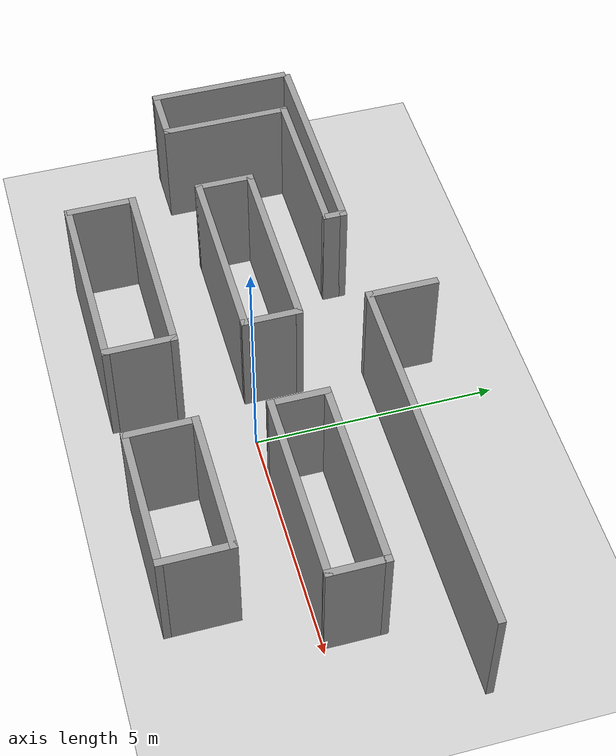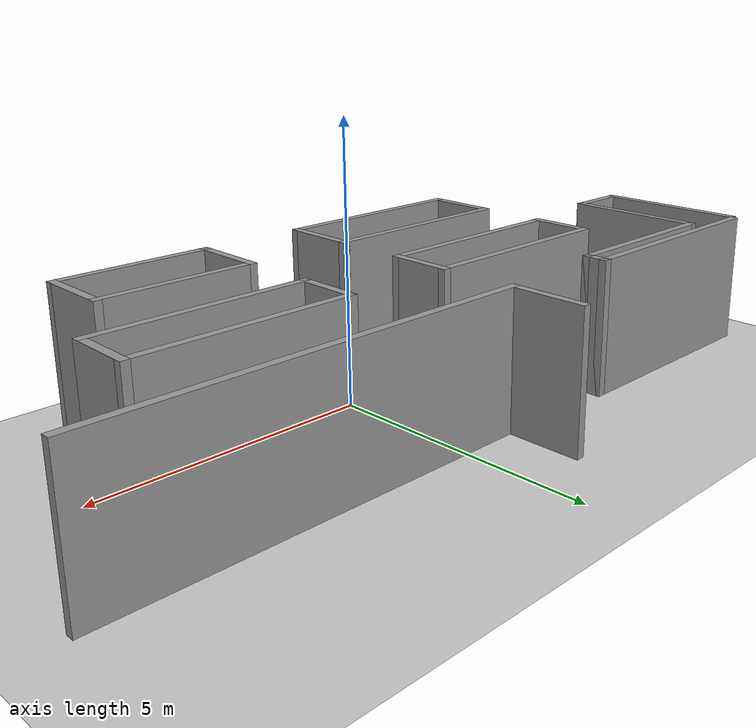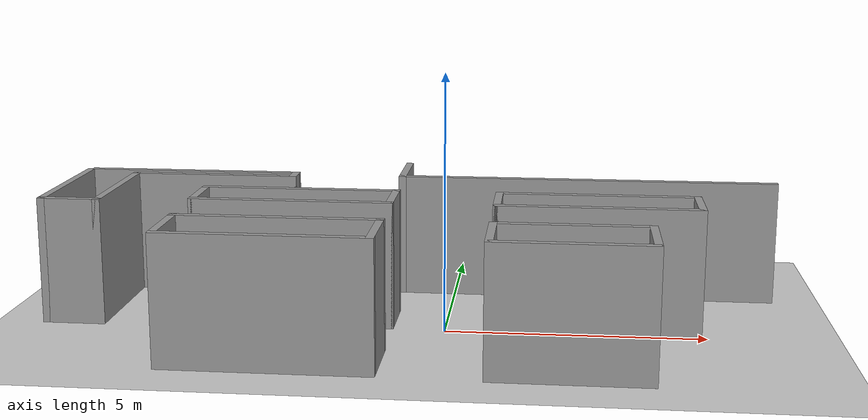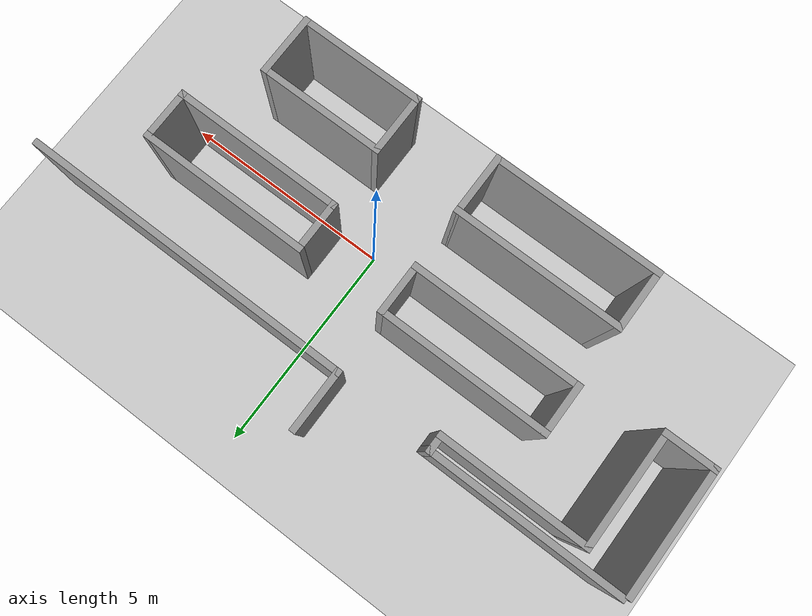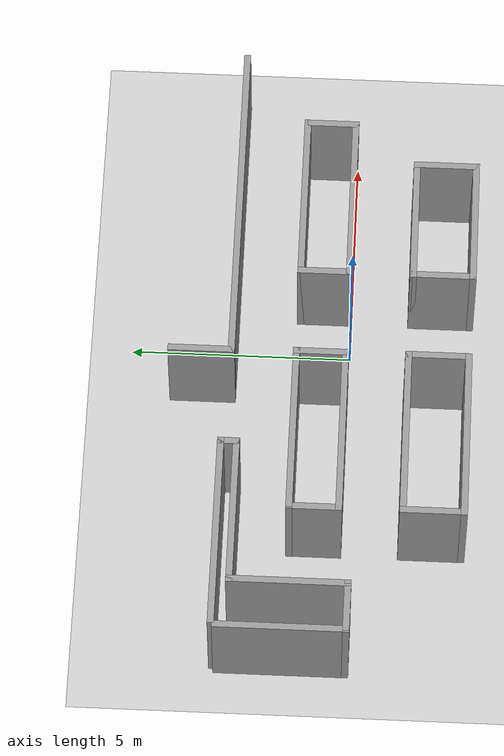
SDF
<sdf version="1.7">
 <world name="default">
  <light name="sun" type="directional">
   <pose>0 0 10 0 -0 0</pose>
   <diffuse>0.8 0.8 0.8 1</diffuse>
   <specular>0.2 0.2 0.2 1</specular>
   <attenuation>
    <range>1000</range>
    <constant>0.9</constant>
    <linear>0.01</linear>
    <quadratic>0.001</quadratic>
   </attenuation>
   <direction>-0.5 0.1 -0.9</direction>
   <spot><inner_angle>0</inner_angle><outer_angle>0</outer_angle><falloff>0</falloff></spot>
  </light>
  <model name="ground_plane">
   <static>1</static>
   <link name="link">
    <collision name="collision">
     <geometry><plane><normal>0 0 1</normal><size>100 100</size></plane></geometry>
     <surface><friction><ode><mu>100</mu><mu2>50</mu2></ode></friction></surface>
    </collision>
    <visual name="visual">
     <cast_shadows>0</cast_shadows>
     <geometry><plane><normal>0 0 1</normal><size>100 100</size></plane></geometry>
     <material>
      <script><uri>file://media/materials/scripts/gazebo.material</uri><name>Gazebo/Grey</name></script>
     </material>
    </visual>
   </link>
  </model>
  <gravity>0 0 -9.8</gravity>
  <magnetic_field>6e-06 2.3e-05 -4.2e-05</magnetic_field>
  <atmosphere type="adiabatic"/>
  <physics type="ode">
   <max_step_size>0.001</max_step_size>
   <real_time_factor>1</real_time_factor>
   <real_time_update_rate>1000</real_time_update_rate>
  </physics>
  <scene><ambient>0.4 0.4 0.4 1</ambient><background>0.7 0.7 0.7 1</background><shadows>1</shadows></scene>
  <audio><device>default</device></audio>
  <spherical_coordinates>
   <surface_model>EARTH_WGS84</surface_model>
   <latitude_deg>0</latitude_deg>
   <longitude_deg>0</longitude_deg>
   <elevation>0</elevation>
   <heading_deg>0</heading_deg>
  </spherical_coordinates>
  <model name="wall">
   <pose>-0.68153 0.64536 0 0 -0 0</pose>
   <link name="Wall_0">
    <collision name="Wall_0_Collision">
     <geometry><box><size>4 0.15 2.5</size></box></geometry>
     <pose>0 0 1.25 0 -0 0</pose>
    </collision>
    <visual name="Wall_0_Visual">
     <pose>0 0 1.25 0 -0 0</pose>
     <geometry><box><size>4 0.15 2.5</size></box></geometry>
     <material>
      <script><uri>file://media/materials/scripts/gazebo.material</uri><name>Gazebo/Grey</name></script>
      <ambient>1 1 1 1</ambient>
     </material>
     <meta><layer>0</layer></meta>
    </visual>
    <pose>-2.30976 -1.96464 0 0 -0 0</pose>
   </link>
   <link name="Wall_1">
    <collision name="Wall_1_Collision">
     <geometry><box><size>1.5 0.15 2.5</size></box></geometry>
     <pose>0 0 1.25 0 -0 0</pose>
    </collision>
    <visual name="Wall_1_Visual">
     <pose>0 0 1.25 0 -0 0</pose>
     <geometry><box><size>1.5 0.15 2.5</size></box></geometry>
     <material>
      <script><uri>file://media/materials/scripts/gazebo.material</uri><name>Gazebo/Grey</name></script>
      <ambient>1 1 1 1</ambient>
     </material>
     <meta><layer>0</layer></meta>
    </visual>
    <pose>-0.384764 -2.63964 0 0 -0 -1.5708</pose>
   </link>
   <link name="Wall_11">
    <collision name="Wall_11_Collision">
     <geometry><box><size>4 0.15 2.5</size></box></geometry>
     <pose>0 0 1.25 0 -0 0</pose>
    </collision>
    <visual name="Wall_11_Visual">
     <pose>0 0 1.25 0 -0 0</pose>
     <geometry><box><size>4 0.15 2.5</size></box></geometry>
     <material>
      <script><uri>file://media/materials/scripts/gazebo.material</uri><name>Gazebo/Grey</name></script>
      <ambient>1 1 1 1</ambient>
     </material>
     <meta><layer>0</layer></meta>
    </visual>
    <pose>-2.32146 -0.551695 0 0 -0 0</pose>
   </link>
   <link name="Wall_12">
    <collision name="Wall_12_Collision">
     <geometry><box><size>1.25 0.15 2.5</size></box></geometry>
     <pose>0 0 1.25 0 -0 0</pose>
    </collision>
    <visual name="Wall_12_Visual">
     <pose>0 0 1.25 0 -0 0</pose>
     <geometry><box><size>1.25 0.15 2.5</size></box></geometry>
     <material>
      <script><uri>file://media/materials/scripts/gazebo.material</uri><name>Gazebo/Grey</name></script>
      <ambient>1 1 1 1</ambient>
     </material>
     <meta><layer>0</layer></meta>
    </visual>
    <pose>-0.396464 -0.001695 0 0 -0 1.5708</pose>
   </link>
   <link name="Wall_13">
    <collision name="Wall_13_Collision">
     <geometry><box><size>4 0.15 2.5</size></box></geometry>
     <pose>0 0 1.25 0 -0 0</pose>
    </collision>
    <visual name="Wall_13_Visual">
     <pose>0 0 1.25 0 -0 0</pose>
     <geometry><box><size>4 0.15 2.5</size></box></geometry>
     <material>
      <script><uri>file://media/materials/scripts/gazebo.material</uri><name>Gazebo/Grey</name></script>
      <ambient>1 1 1 1</ambient>
     </material>
     <meta><layer>0</layer></meta>
    </visual>
    <pose>-2.32146 0.548305 0 0 -0 3.14159</pose>
   </link>
   <link name="Wall_14">
    <collision name="Wall_14_Collision">
     <geometry><box><size>1.25 0.15 2.5</size></box></geometry>
     <pose>0 0 1.25 0 -0 0</pose>
    </collision>
    <visual name="Wall_14_Visual">
     <pose>0 0 1.25 0 -0 0</pose>
     <geometry><box><size>1.25 0.15 2.5</size></box></geometry>
     <material>
      <script><uri>file://media/materials/scripts/gazebo.material</uri><name>Gazebo/Grey</name></script>
      <ambient>1 1 1 1</ambient>
     </material>
     <meta><layer>0</layer></meta>
    </visual>
    <pose>-4.24646 -0.001695 0 0 -0 -1.5708</pose>
   </link>
   <link name="Wall_16">
    <collision name="Wall_16_Collision">
     <geometry><box><size>4 0.15 2.5</size></box></geometry>
     <pose>0 0 1.25 0 -0 0</pose>
    </collision>
    <visual name="Wall_16_Visual">
     <pose>0 0 1.25 0 -0 0</pose>
     <geometry><box><size>4 0.15 2.5</size></box></geometry>
     <material>
      <script><uri>file://media/materials/scripts/gazebo.material</uri><name>Gazebo/Grey</name></script>
      <ambient>1 1 1 1</ambient>
     </material>
     <meta><layer>0</layer></meta>
    </visual>
    <pose>3.57689 -0.56492 0 0 -0 0</pose>
   </link>
   <link name="Wall_17">
    <collision name="Wall_17_Collision">
     <geometry><box><size>1.25 0.15 2.5</size></box></geometry>
     <pose>0 0 1.25 0 -0 0</pose>
    </collision>
    <visual name="Wall_17_Visual">
     <pose>0 0 1.25 0 -0 0</pose>
     <geometry><box><size>1.25 0.15 2.5</size></box></geometry>
     <material>
      <script><uri>file://media/materials/scripts/gazebo.material</uri><name>Gazebo/Grey</name></script>
      <ambient>1 1 1 1</ambient>
     </material>
     <meta><layer>0</layer></meta>
    </visual>
    <pose>5.50189 -0.01492 0 0 -0 1.5708</pose>
   </link>
   <link name="Wall_18">
    <collision name="Wall_18_Collision">
     <geometry><box><size>4 0.15 2.5</size></box></geometry>
     <pose>0 0 1.25 0 -0 0</pose>
    </collision>
    <visual name="Wall_18_Visual">
     <pose>0 0 1.25 0 -0 0</pose>
     <geometry><box><size>4 0.15 2.5</size></box></geometry>
     <material>
      <script><uri>file://media/materials/scripts/gazebo.material</uri><name>Gazebo/Grey</name></script>
      <ambient>1 1 1 1</ambient>
     </material>
     <meta><layer>0</layer></meta>
    </visual>
    <pose>3.57689 0.53508 0 0 -0 3.14159</pose>
   </link>
   <link name="Wall_19">
    <collision name="Wall_19_Collision">
     <geometry><box><size>1.25 0.15 2.5</size></box></geometry>
     <pose>0 0 1.25 0 -0 0</pose>
    </collision>
    <visual name="Wall_19_Visual">
     <pose>0 0 1.25 0 -0 0</pose>
     <geometry><box><size>1.25 0.15 2.5</size></box></geometry>
     <material>
      <script><uri>file://media/materials/scripts/gazebo.material</uri><name>Gazebo/Grey</name></script>
      <ambient>1 1 1 1</ambient>
     </material>
     <meta><layer>0</layer></meta>
    </visual>
    <pose>1.65189 -0.01492 0 0 -0 -1.5708</pose>
   </link>
   <link name="Wall_21">
    <collision name="Wall_21_Collision">
     <geometry><box><size>2.75 0.15 2.5</size></box></geometry>
     <pose>0 0 1.25 0 -0 0</pose>
    </collision>
    <visual name="Wall_21_Visual">
     <pose>0 0 1.25 0 -0 0</pose>
     <geometry><box><size>2.75 0.15 2.5</size></box></geometry>
     <material>
      <script><uri>file://media/materials/scripts/gazebo.material</uri><name>Gazebo/Grey</name></script>
      <ambient>1 1 1 1</ambient>
     </material>
     <meta><layer>0</layer></meta>
    </visual>
    <pose>-6.0648 0.479483 0 0 -0 1.5708</pose>
   </link>
   <link name="Wall_22">
    <collision name="Wall_22_Collision">
     <geometry><box><size>3.5 0.15 2.5</size></box></geometry>
     <pose>0 0 1.25 0 -0 0</pose>
    </collision>
    <visual name="Wall_22_Visual">
     <pose>0 0 1.25 0 -0 0</pose>
     <geometry><box><size>3.5 0.15 2.5</size></box></geometry>
     <material>
      <script><uri>file://media/materials/scripts/gazebo.material</uri><name>Gazebo/Grey</name></script>
      <ambient>1 1 1 1</ambient>
     </material>
     <meta><layer>0</layer></meta>
    </visual>
    <pose>-4.3898 1.77948 0 0 -0 0</pose>
   </link>
   <link name="Wall_23">
    <collision name="Wall_23_Collision">
     <geometry><box><size>0.5 0.15 2.5</size></box></geometry>
     <pose>0 0 1.25 0 -0 0</pose>
    </collision>
    <visual name="Wall_23_Visual">
     <pose>0 0 1.25 0 -0 0</pose>
     <geometry><box><size>0.5 0.15 2.5</size></box></geometry>
     <material>
      <script><uri>file://media/materials/scripts/gazebo.material</uri><name>Gazebo/Grey</name></script>
      <ambient>1 1 1 1</ambient>
     </material>
     <meta><layer>0</layer></meta>
    </visual>
    <pose>-2.7148 1.95448 0 0 -0 1.5708</pose>
   </link>
   <link name="Wall_24">
    <collision name="Wall_24_Collision">
     <geometry><box><size>4.5 0.15 2.5</size></box></geometry>
     <pose>0 0 1.25 0 -0 0</pose>
    </collision>
    <visual name="Wall_24_Visual">
     <pose>0 0 1.25 0 -0 0</pose>
     <geometry><box><size>4.5 0.15 2.5</size></box></geometry>
     <material>
      <script><uri>file://media/materials/scripts/gazebo.material</uri><name>Gazebo/Grey</name></script>
      <ambient>1 1 1 1</ambient>
     </material>
     <meta><layer>0</layer></meta>
    </visual>
    <pose>-4.8898 2.12948 0 0 -0 3.14159</pose>
   </link>
   <link name="Wall_28">
    <collision name="Wall_28_Collision">
     <geometry><box><size>1.25 0.15 2.5</size></box></geometry>
     <pose>0 0 1.25 0 -0 0</pose>
    </collision>
    <visual name="Wall_28_Visual">
     <pose>0 0 1.25 0 -0 0</pose>
     <geometry><box><size>1.25 0.15 2.5</size></box></geometry>
     <material>
      <script><uri>file://media/materials/scripts/gazebo.material</uri><name>Gazebo/Grey</name></script>
      <ambient>1 1 1 1</ambient>
     </material>
     <meta><layer>0</layer></meta>
    </visual>
    <pose>-6.6148 -0.820517 0 0 -0 3.14159</pose>
   </link>
   <link name="Wall_29">
    <collision name="Wall_29_Collision">
     <geometry><box><size>3 0.15 2.5</size></box></geometry>
     <pose>0 0 1.25 0 -0 0</pose>
    </collision>
    <visual name="Wall_29_Visual">
     <pose>0 0 1.25 0 -0 0</pose>
     <geometry><box><size>3 0.15 2.5</size></box></geometry>
     <material>
      <script><uri>file://media/materials/scripts/gazebo.material</uri><name>Gazebo/Grey</name></script>
      <ambient>1 1 1 1</ambient>
     </material>
     <meta><layer>0</layer></meta>
    </visual>
    <pose>-7.1648 0.604483 0 0 -0 1.5708</pose>
   </link>
   <link name="Wall_3">
    <collision name="Wall_3_Collision">
     <geometry><box><size>1.5 0.15 2.5</size></box></geometry>
     <pose>0 0 1.25 0 -0 0</pose>
    </collision>
    <visual name="Wall_3_Visual">
     <pose>0 0 1.25 0 -0 0</pose>
     <geometry><box><size>1.5 0.15 2.5</size></box></geometry>
     <material>
      <script><uri>file://media/materials/scripts/gazebo.material</uri><name>Gazebo/Grey</name></script>
      <ambient>1 1 1 1</ambient>
     </material>
     <meta><layer>0</layer></meta>
    </visual>
    <pose>1.65524 -2.67964 0 0 -0 1.5708</pose>
   </link>
   <link name="Wall_31">
    <collision name="Wall_31_Collision">
     <geometry><box><size>1.5 0.15 2.5</size></box></geometry>
     <pose>0 0 1.25 0 -0 0</pose>
    </collision>
    <visual name="Wall_31_Visual">
     <pose>0 0 1.25 0 -0 0</pose>
     <geometry><box><size>1.5 0.15 2.5</size></box></geometry>
     <material>
      <script><uri>file://media/materials/scripts/gazebo.material</uri><name>Gazebo/Grey</name></script>
      <ambient>1 1 1 1</ambient>
     </material>
     <meta><layer>0</layer></meta>
    </visual>
    <pose>-0.435201 2.67964 0 0 -0 -1.5708</pose>
   </link>
   <link name="Wall_32">
    <collision name="Wall_32_Collision">
     <geometry><box><size>7.75 0.15 2.5</size></box></geometry>
     <pose>0 0 1.25 0 -0 0</pose>
    </collision>
    <visual name="Wall_32_Visual">
     <pose>0 0 1.25 0 -0 0</pose>
     <geometry><box><size>7.75 0.15 2.5</size></box></geometry>
     <material>
      <script><uri>file://media/materials/scripts/gazebo.material</uri><name>Gazebo/Grey</name></script>
      <ambient>1 1 1 1</ambient>
     </material>
     <meta><layer>0</layer></meta>
    </visual>
    <pose>3.3648 2.00465 0 0 -0 0</pose>
   </link>
   <link name="Wall_4">
    <collision name="Wall_4_Collision">
     <geometry><box><size>3 0.15 2.5</size></box></geometry>
     <pose>0 0 1.25 0 -0 0</pose>
    </collision>
    <visual name="Wall_4_Visual">
     <pose>0 0 1.25 0 -0 0</pose>
     <geometry><box><size>3 0.15 2.5</size></box></geometry>
     <material>
      <script><uri>file://media/materials/scripts/gazebo.material</uri><name>Gazebo/Grey</name></script>
      <ambient>1 1 1 1</ambient>
     </material>
     <meta><layer>0</layer></meta>
    </visual>
    <pose>3.08024 -2.00465 0 0 -0 0</pose>
   </link>
   <link name="Wall_5">
    <collision name="Wall_5_Collision">
     <geometry><box><size>1.5 0.15 2.5</size></box></geometry>
     <pose>0 0 1.25 0 -0 0</pose>
    </collision>
    <visual name="Wall_5_Visual">
     <pose>0 0 1.25 0 -0 0</pose>
     <geometry><box><size>1.5 0.15 2.5</size></box></geometry>
     <material>
      <script><uri>file://media/materials/scripts/gazebo.material</uri><name>Gazebo/Grey</name></script>
      <ambient>1 1 1 1</ambient>
     </material>
     <meta><layer>0</layer></meta>
    </visual>
    <pose>4.50524 -2.67964 0 0 -0 -1.5708</pose>
   </link>
   <link name="Wall_6">
    <collision name="Wall_6_Collision">
     <geometry><box><size>3 0.15 2.5</size></box></geometry>
     <pose>0 0 1.25 0 -0 0</pose>
    </collision>
    <visual name="Wall_6_Visual">
     <pose>0 0 1.25 0 -0 0</pose>
     <geometry><box><size>3 0.15 2.5</size></box></geometry>
     <material>
      <script><uri>file://media/materials/scripts/gazebo.material</uri><name>Gazebo/Grey</name></script>
      <ambient>1 1 1 1</ambient>
     </material>
     <meta><layer>0</layer></meta>
    </visual>
    <pose>3.08024 -3.35465 0 0 -0 3.14159</pose>
   </link>
   <link name="Wall_8">
    <collision name="Wall_8_Collision">
     <geometry><box><size>4 0.15 2.5</size></box></geometry>
     <pose>0 0 1.25 0 -0 0</pose>
    </collision>
    <visual name="Wall_8_Visual">
     <pose>0 0 1.25 0 -0 0</pose>
     <geometry><box><size>4 0.15 2.5</size></box></geometry>
     <material>
      <script><uri>file://media/materials/scripts/gazebo.material</uri><name>Gazebo/Grey</name></script>
      <ambient>1 1 1 1</ambient>
     </material>
     <meta><layer>0</layer></meta>
    </visual>
    <pose>-2.30976 -3.31465 0 0 -0 3.14159</pose>
   </link>
   <link name="Wall_9">
    <collision name="Wall_9_Collision">
     <geometry><box><size>1.5 0.15 2.5</size></box></geometry>
     <pose>0 0 1.25 0 -0 0</pose>
    </collision>
    <visual name="Wall_9_Visual">
     <pose>0 0 1.25 0 -0 0</pose>
     <geometry><box><size>1.5 0.15 2.5</size></box></geometry>
     <material>
      <script><uri>file://media/materials/scripts/gazebo.material</uri><name>Gazebo/Grey</name></script>
      <ambient>1 1 1 1</ambient>
     </material>
     <meta><layer>0</layer></meta>
    </visual>
    <pose>-4.23476 -2.63964 0 0 -0 1.5708</pose>
   </link>
   <static>1</static>
  </model>
 </world>
</sdf>
